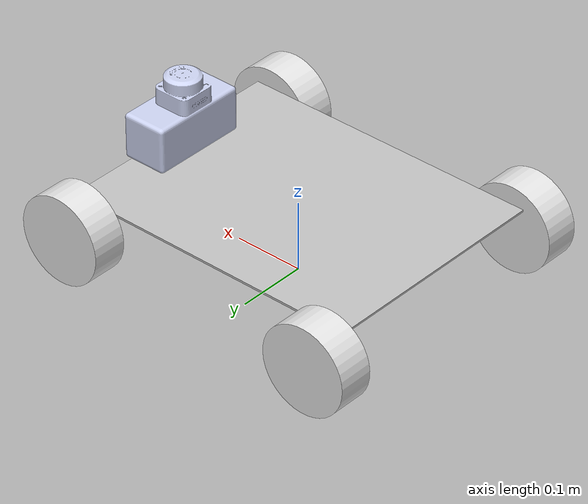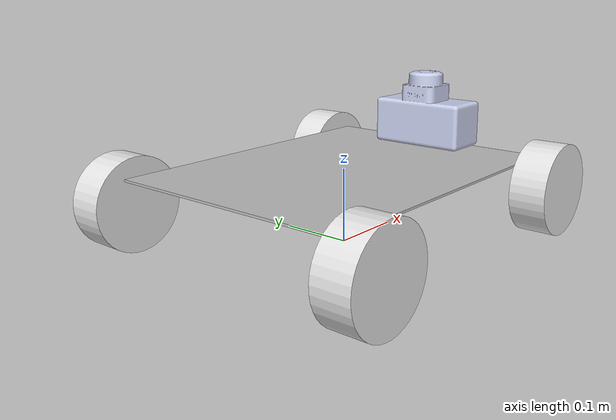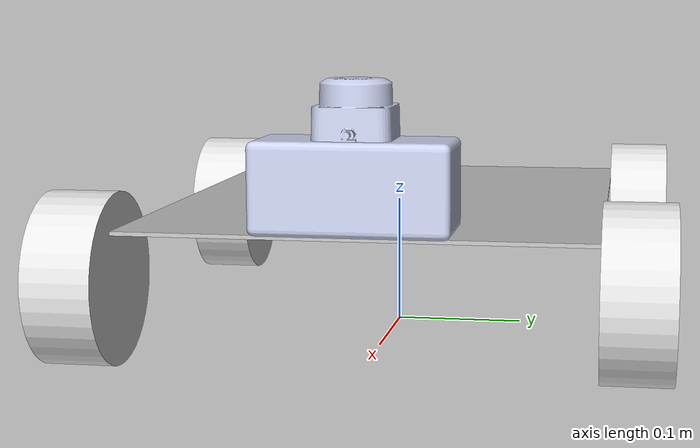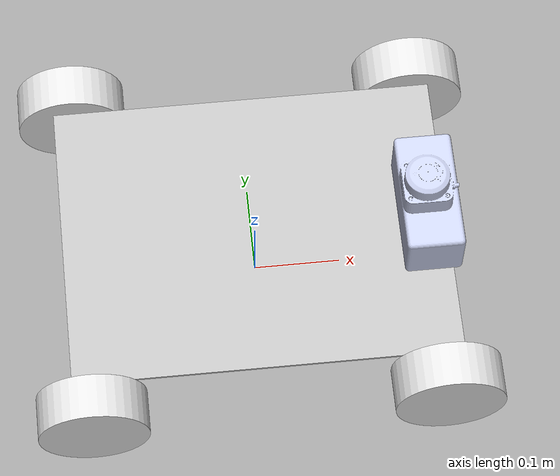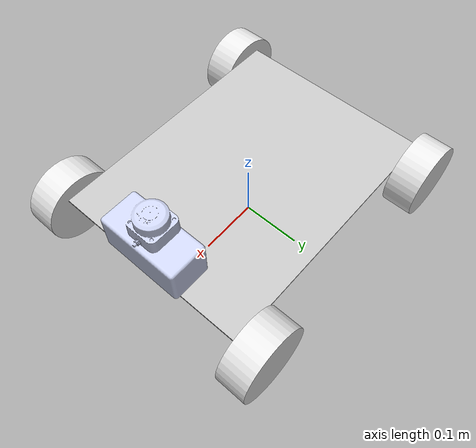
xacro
<?xml version="1.0"?>
<robot name="Batly" xmlns:xacro="https://www.ros.org/wiki/xacro">
  <link name="base_footprint">
  </link>
  <link
    name="base_link">
    <inertial>
      <origin
        xyz="-2.26145053676123E-17 2.02588297383029E-17 0.0015"
        rpy="0 0 0" />
      <mass
        value="0.4488" />
      <inertia
        ixx="0.0043237766"
        ixy="6.48251822591798E-19"
        ixz="2.62831856973067E-21"
        iyy="0.0072409766"
        iyz="-2.39992668388718E-21"
        izz="0.01156408" />
    </inertial>
    <visual>
      <origin
        xyz="0 0 0"
        rpy="0 0 0" />
      <geometry>
        <mesh
          filename="package://ros2_control_test/meshes/base_link.STL" />
      </geometry>
      <material
        name="">
        <color
          rgba="0.752941176470588 0.752941176470588 0.752941176470588 1" />
      </material>
    </visual>
    <collision>
      <origin
        xyz="0 0 0"
        rpy="0 0 0" />
      <geometry>
        <mesh
          filename="package://ros2_control_test/meshes/base_link.STL" />
      </geometry>
    </collision>
  </link>
  <joint name="base_to_basefootprint" type="fixed">
    <parent link="base_footprint" />
    <child link="base_link" />
    <origin xyz="0 0 0.1" />
  </joint>
  <link
    name="front_left_wheel_link">
    <inertial>
      <origin
        xyz="0 0 0"
        rpy="0 0 0" />
      <mass
        value="0.613592315154256" />
      <inertia
        ixx="0.000727042977591632"
        ixy="-9.68626335824551E-20"
        ixz="-2.82344315751431E-21"
        iyy="0.00119842249053566"
        iyz="3.97322248689187E-21"
        izz="0.000727042977591632" />
    </inertial>
    <visual>
      <origin
        xyz="0 0 0"
        rpy="0 0 0" />
      <geometry>
        <mesh
          filename="package://ros2_control_test/meshes/front_left_wheel_link.STL" />
      </geometry>
      <material
        name="">
        <color
          rgba="0.894117647058823 0.894117647058823 0.894117647058823 1" />
      </material>
    </visual>
    <collision>
      <origin
        xyz="0 0 0"
        rpy="0 0 0" />
      <geometry>
        <mesh
          filename="package://ros2_control_test/meshes/front_left_wheel_link.STL" />
      </geometry>
    </collision>
  </link>
  <joint
    name="front_left_wheel_joint"
    type="continuous">
    <origin
      xyz="0.2 0.195 -0.034"
      rpy="0 0 0" />
    <parent
      link="base_link" />
    <child
      link="front_left_wheel_link" />
    <axis
      xyz="0 1 0" />
  </joint>
  <link
    name="rear_left_wheel_link">
    <inertial>
      <origin
        xyz="-2.77555756156289E-17 0 0"
        rpy="0 0 0" />
      <mass
        value="0.613592315154256" />
      <inertia
        ixx="0.000727042977591632"
        ixy="-1.08156406212512E-19"
        ixz="7.05860789378584E-20"
        iyy="0.00119842249053566"
        iyz="9.62010880192053E-21"
        izz="0.000727042977591632" />
    </inertial>
    <visual>
      <origin
        xyz="0 0 0"
        rpy="0 0 0" />
      <geometry>
        <mesh
          filename="package://ros2_control_test/meshes/rear_left_wheel_link.STL" />
      </geometry>
      <material
        name="">
        <color
          rgba="0.894117647058823 0.894117647058823 0.894117647058823 1" />
      </material>
    </visual>
    <collision>
      <origin
        xyz="0 0 0"
        rpy="0 0 0" />
      <geometry>
        <mesh
          filename="package://ros2_control_test/meshes/rear_left_wheel_link.STL" />
      </geometry>
    </collision>
  </link>
  <joint
    name="rear_left_wheel_joint"
    type="continuous">
    <origin
      xyz="-0.2 0.195 -0.034"
      rpy="0 0 0" />
    <parent
      link="base_link" />
    <child
      link="rear_left_wheel_link" />
    <axis
      xyz="0 1 0" />
  </joint>
  <link
    name="front_right_wheel_link">
    <inertial>
      <origin
        xyz="0 2.77555756156289E-17 0"
        rpy="0 0 0" />
      <mass
        value="0.613592315154256" />
      <inertia
        ixx="0.000727042977591632"
        ixy="-7.42750883223406E-20"
        ixz="2.5410988417629E-20"
        iyy="0.00119842249053566"
        iyz="-7.32055014316547E-21"
        izz="0.000727042977591632" />
    </inertial>
    <visual>
      <origin
        xyz="0 0 0"
        rpy="0 0 0" />
      <geometry>
        <mesh
          filename="package://ros2_control_test/meshes/front_right_wheel_link.STL" />
      </geometry>
      <material
        name="">
        <color
          rgba="0.894117647058823 0.894117647058823 0.894117647058823 1" />
      </material>
    </visual>
    <collision>
      <origin
        xyz="0 0 0"
        rpy="0 0 0" />
      <geometry>
        <mesh
          filename="package://ros2_control_test/meshes/front_right_wheel_link.STL" />
      </geometry>
    </collision>
  </link>
  <joint
    name="front_right_wheel_joint"
    type="continuous">
    <origin
      xyz="0.2 -0.195 -0.034"
      rpy="0 0 0" />
    <parent
      link="base_link" />
    <child
      link="front_right_wheel_link" />
    <axis
      xyz="0 1 0" />
  </joint>
  <link
    name="rear_right_wheel_link">
    <inertial>
      <origin
        xyz="0 2.77555756156289E-17 0"
        rpy="0 0 0" />
      <mass
        value="0.613592315154256" />
      <inertia
        ixx="0.000727042977591632"
        ixy="-1.08156406212513E-19"
        ixz="-1.97641021026001E-20"
        iyy="0.00119842249053566"
        iyz="9.6201088019205E-21"
        izz="0.000727042977591632" />
    </inertial>
    <visual>
      <origin
        xyz="0 0 0"
        rpy="0 0 0" />
      <geometry>
        <mesh
          filename="package://ros2_control_test/meshes/rear_right_wheel_link.STL" />
      </geometry>
      <material
        name="">
        <color
          rgba="0.894117647058823 0.894117647058823 0.894117647058823 1" />
      </material>
    </visual>
    <collision>
      <origin
        xyz="0 0 0"
        rpy="0 0 0" />
      <geometry>
        <mesh
          filename="package://ros2_control_test/meshes/rear_right_wheel_link.STL" />
      </geometry>
    </collision>
  </link>
  <joint
    name="rear_right_wheel_joint"
    type="continuous">
    <origin
      xyz="-0.2 -0.195 -0.034"
      rpy="0 0 0" />
    <parent
      link="base_link" />
    <child
      link="rear_right_wheel_link" />
    <axis
      xyz="0 1 0" />
  </joint>
  <link
    name="lidar_link">
    <inertial>
      <origin
        xyz="-0.0040219593206734 6.64850262381965E-09 -0.066125785628255"
        rpy="0 0 0" />
      <mass
        value="0.688386275426875" />
      <inertia
        ixx="0.00118741638517872"
        ixy="-8.62020006485593E-11"
        ixz="-1.05221838791302E-07"
        iyy="0.000442504956375202"
        iyz="1.32637814261978E-11"
        izz="0.0011958627366593" />
    </inertial>
    <visual>
      <origin
        xyz="0 0 0"
        rpy="0 0 0" />
      <geometry>
        <mesh
          filename="package://ros2_control_test/meshes/lidar_link.STL" />
      </geometry>
      <material
        name="">
        <color
          rgba="0.792156862745098 0.819607843137255 0.933333333333333 1" />
      </material>
    </visual>
    <collision>
      <origin
        xyz="0 0 0"
        rpy="0 0 0" />
      <geometry>
        <mesh
          filename="package://ros2_control_test/meshes/lidar_link.STL" />
      </geometry>
    </collision>
  </link>
  <joint
    name="lidar_joint"
    type="fixed">
    <origin
      xyz="0.19221 0 0.1092"
      rpy="0 0 ${pi}" />
    <parent
      link="base_link" />
    <child
      link="lidar_link" />
    <axis
      xyz="0 0 0" />
  </joint>

  <xacro:include filename="ros2_control_plugin.xacro" />

</robot>
